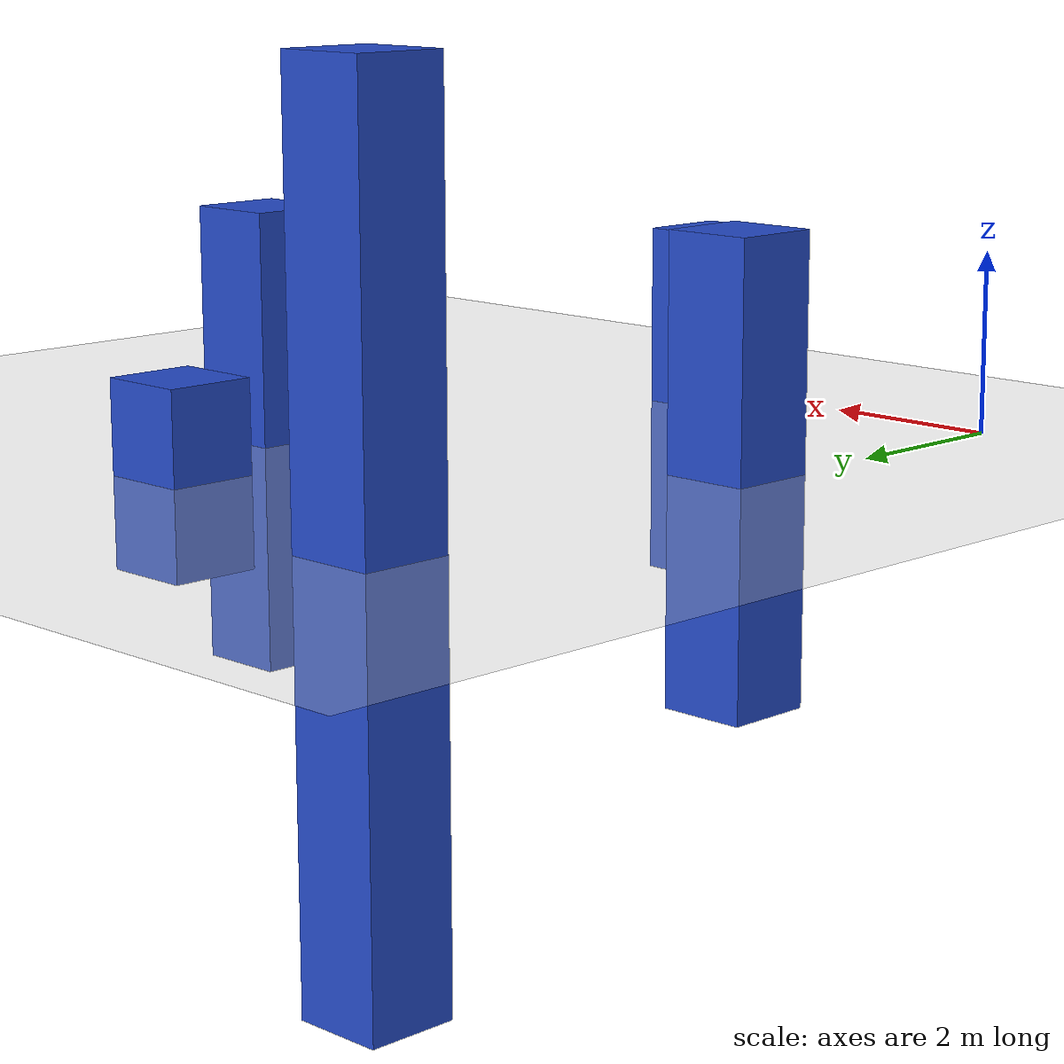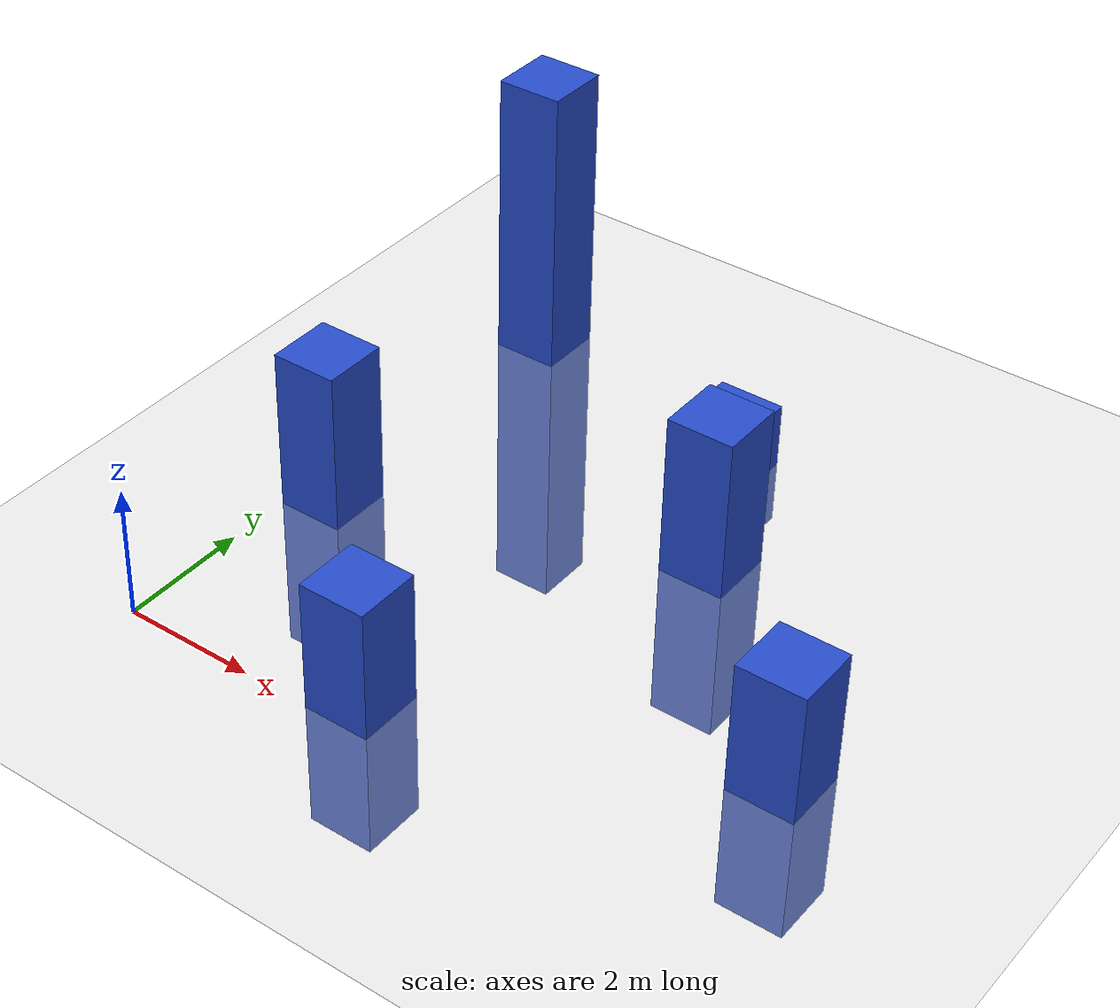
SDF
<sdf version="1.6">
 <world name="default">
  <model name="ground_plane">
   <static>1</static>
   <link name="link">
    <collision name="collision">
     <geometry><plane><normal>0 0 1</normal><size>100 100</size></plane></geometry>
     <surface>
      <contact><collide_bitmask>65535</collide_bitmask></contact>
      <friction><ode><mu>100</mu><mu2>50</mu2></ode></friction>
     </surface>
    </collision>
    <visual name="visual">
     <cast_shadows>0</cast_shadows>
     <geometry><plane><normal>0 0 1</normal><size>100 100</size></plane></geometry>
     <material>
      <script><uri>file://media/materials/scripts/gazebo.material</uri><name>Gazebo/Grey</name></script>
     </material>
    </visual>
   </link>
  </model>
  <light name="sun" type="directional">
   <pose>0 0 10 0 -0 0</pose>
   <diffuse>0.8 0.8 0.8 1</diffuse>
   <specular>0.2 0.2 0.2 1</specular>
   <attenuation>
    <range>1000</range>
    <constant>0.9</constant>
    <linear>0.01</linear>
    <quadratic>0.001</quadratic>
   </attenuation>
   <direction>-0.5 0.1 -0.9</direction>
  </light>
  <plugin name="ros_interface_plugin" filename="librotors_gazebo_ros_interface_plugin.so"/>
  <spherical_coordinates>
   <surface_model>EARTH_WGS84</surface_model>
   <latitude_deg>47.3667</latitude_deg>
   <longitude_deg>8.55</longitude_deg>
   <elevation>500</elevation>
   <heading_deg>0</heading_deg>
  </spherical_coordinates>
  <physics name="default_physics" default="0" type="ode">
   <ode>
    <solver>
     <type>quick</type>
     <iters>1000</iters>
     <sor>1.3</sor>
     <use_dynamic_moi_rescaling>0</use_dynamic_moi_rescaling>
    </solver>
    <constraints>
     <cfm>0</cfm>
     <erp>0.2</erp>
     <contact_max_correcting_vel>100</contact_max_correcting_vel>
     <contact_surface_layer>0.001</contact_surface_layer>
    </constraints>
   </ode>
   <max_step_size>0.01</max_step_size>
   <real_time_factor>1</real_time_factor>
   <real_time_update_rate>100</real_time_update_rate>
  </physics>
  <gravity>0 0 -9.8</gravity>
  <magnetic_field>6e-06 2.3e-05 -4.2e-05</magnetic_field>
  <atmosphere type="adiabatic"/>
  <scene><ambient>0.4 0.4 0.4 1</ambient><background>0.7 0.7 0.7 1</background><shadows>1</shadows></scene>
  <audio><device>default</device></audio>
  <model name="unit_box_000">
   <pose>3.5    0.5     0 0 0 0</pose>
   <static>1</static>
   <link name="link">
    <inertial>
     <mass>1</mass>
     <inertia>
      <ixx>0.166667</ixx>
      <ixy>0</ixy>
      <ixz>0</ixz>
      <iyy>0.166667</iyy>
      <iyz>0</iyz>
      <izz>0.166667</izz>
     </inertia>
    </inertial>
    <collision name="collision"><geometry><box><size>1 1 4</size></box></geometry></collision>
    <visual name="visual">
     <geometry><box><size>1 1 4</size></box></geometry>
     <material>
      <script><name>Gazebo/Blue</name><uri>file://media/materials/scripts/gazebo.material</uri></script>
     </material>
    </visual>
   </link>
  </model>
  <model name="unit_box_001">
   <pose>5.5    5.5     0 0 0 0</pose>
   <static>1</static>
   <link name="link">
    <inertial>
     <mass>1</mass>
     <inertia>
      <ixx>0.166667</ixx>
      <ixy>0</ixy>
      <ixz>0</ixz>
      <iyy>0.166667</iyy>
      <iyz>0</iyz>
      <izz>0.166667</izz>
     </inertia>
    </inertial>
    <collision name="collision"><geometry><box><size>1 1 5</size></box></geometry></collision>
    <visual name="visual">
     <geometry><box><size>1 1 5</size></box></geometry>
     <material>
      <script><name>Gazebo/Blue</name><uri>file://media/materials/scripts/gazebo.material</uri></script>
     </material>
    </visual>
   </link>
  </model>
  <model name="unit_box_002">
   <pose>0.5    3.5     0 0 0 0</pose>
   <static>1</static>
   <link name="link">
    <inertial>
     <mass>1</mass>
     <inertia>
      <ixx>0.166667</ixx>
      <ixy>0</ixy>
      <ixz>0</ixz>
      <iyy>0.166667</iyy>
      <iyz>0</iyz>
      <izz>0.166667</izz>
     </inertia>
    </inertial>
    <collision name="collision"><geometry><box><size>1 1 5</size></box></geometry></collision>
    <visual name="visual">
     <geometry><box><size>1 1 5</size></box></geometry>
     <material>
      <script><name>Gazebo/Blue</name><uri>file://media/materials/scripts/gazebo.material</uri></script>
     </material>
    </visual>
   </link>
  </model>
  <model name="unit_box_003">
   <pose>0.5    8.5     0 0 0 0</pose>
   <static>1</static>
   <link name="link">
    <inertial>
     <mass>1</mass>
     <inertia>
      <ixx>0.166667</ixx>
      <ixy>0</ixy>
      <ixz>0</ixz>
      <iyy>0.166667</iyy>
      <iyz>0</iyz>
      <izz>0.166667</izz>
     </inertia>
    </inertial>
    <collision name="collision"><geometry><box><size>1 1 9</size></box></geometry></collision>
    <visual name="visual">
     <geometry><box><size>1 1 9</size></box></geometry>
     <material>
      <script><name>Gazebo/Blue</name><uri>file://media/materials/scripts/gazebo.material</uri></script>
     </material>
    </visual>
   </link>
  </model>
  <model name="unit_box_004">
   <pose>8.5    2.5     0 0 0 0</pose>
   <static>1</static>
   <link name="link">
    <inertial>
     <mass>1</mass>
     <inertia>
      <ixx>0.166667</ixx>
      <ixy>0</ixy>
      <ixz>0</ixz>
      <iyy>0.166667</iyy>
      <iyz>0</iyz>
      <izz>0.166667</izz>
     </inertia>
    </inertial>
    <collision name="collision"><geometry><box><size>1 1 4</size></box></geometry></collision>
    <visual name="visual">
     <geometry><box><size>1 1 4</size></box></geometry>
     <material>
      <script><name>Gazebo/Blue</name><uri>file://media/materials/scripts/gazebo.material</uri></script>
     </material>
    </visual>
   </link>
  </model>
  <model name="unit_box_005">
   <pose>4.5    7.5     0 0 0 0</pose>
   <static>1</static>
   <link name="link">
    <inertial>
     <mass>1</mass>
     <inertia>
      <ixx>0.166667</ixx>
      <ixy>0</ixy>
      <ixz>0</ixz>
      <iyy>0.166667</iyy>
      <iyz>0</iyz>
      <izz>0.166667</izz>
     </inertia>
    </inertial>
    <collision name="collision"><geometry><box><size>1 1 2</size></box></geometry></collision>
    <visual name="visual">
     <geometry><box><size>1 1 2</size></box></geometry>
     <material>
      <script><name>Gazebo/Blue</name><uri>file://media/materials/scripts/gazebo.material</uri></script>
     </material>
    </visual>
   </link>
  </model>
 </world>
</sdf>
